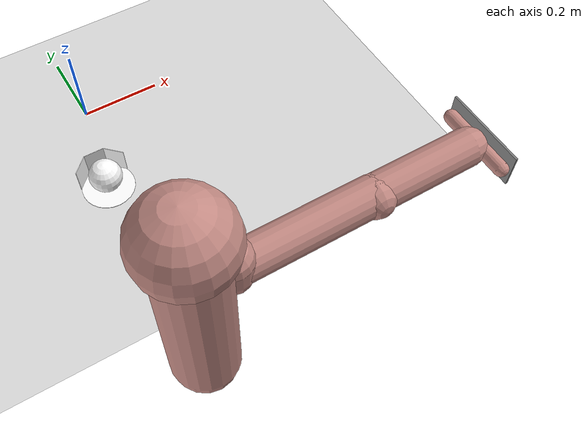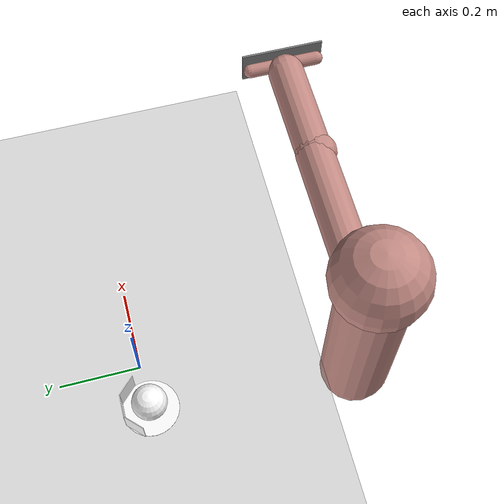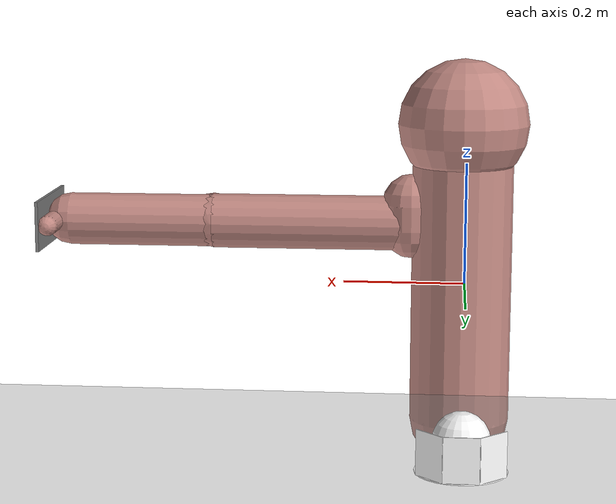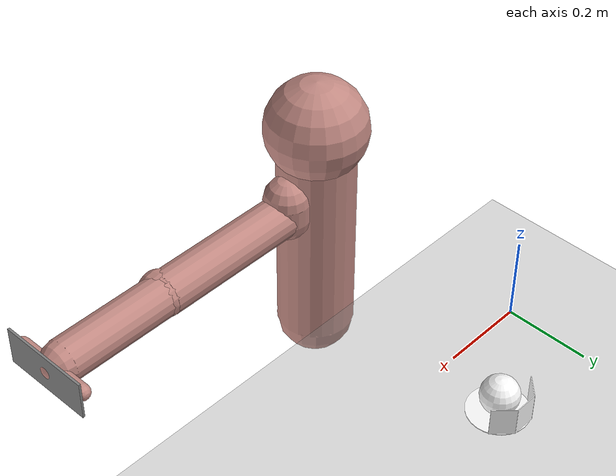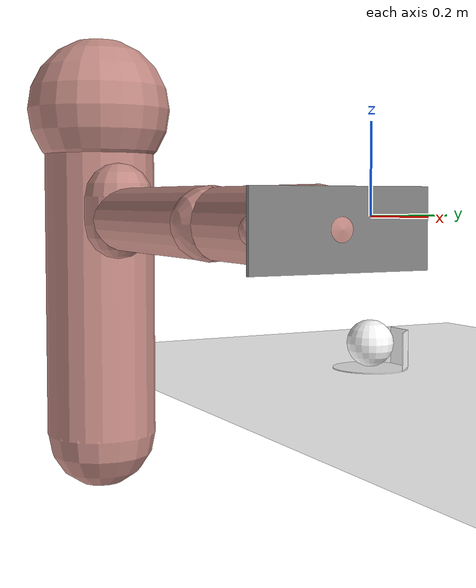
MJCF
<mujoco model="arm3d">
  <compiler inertiafromgeom="true" angle="radian" coordinate="local"/>
  <option timestep="0.01" gravity="0 0 0" iterations="20" integrator="Euler"/>

  <default>
    <joint armature='0.04' damping="1" limited="true"/>
    <geom friction=".0 .0 .0" density="300" margin="0.002" condim="1" contype="0" conaffinity="0"/>
  </default>

  <asset>
    <texture type="skybox" builtin="checker" rgb1="0 0 0" rgb2="0 0 0"
             width="256" height="256"/>
    <texture name="texgeom" type="cube" builtin="flat" mark="cross" width="127" height="1278" rgb1="0.8 0.6 0.4" rgb2="0.8 0.6 0.4" markrgb="1 1 1" random="0.01" />
    <texture name="texplane" type="2d" builtin="checker" rgb1=".5 .5 .5" rgb2=".5 .5 .5" width="100" height="100" />
    <texture name="texplane_show" type="2d" builtin="checker" rgb1="0 0 0" rgb2="0.9 0.9 0.9" width="100" height="100" />
    <material name='MatPlane' texture="texplane" shininess="1" texrepeat="30 30" specular="1"  reflectance="0.5" />
    <material name='geom' texture="texgeom" texuniform="true" />
  </asset>

  <worldbody>
    <light diffuse=".5 .5 .5" pos="0 0 3" dir="0 0 -1"/>
    <geom name="table" type="plane" pos="0 0.5 -0.325" size="1 1 0.1" contype="1" conaffinity="1"/>

    <body name="r_shoulder_pan_link" pos="0 -0.6 0">
      <geom name="h_e1" type="sphere" rgba="0.7725 0.549 0.5216 1" pos="0 0 0.2" size="0.13" />

      <geom name="h_sp" type="capsule" fromto="0 0 -0.4 0 0 0.2" size="0.1" rgba="0.7725 0.549 0.5216 1"/>

      <joint name="r_shoulder_pan_joint" type="hinge" pos="0 0 0" axis="0 0 1" range="-2.2854 1.714602" damping="1.0" />

      <body name="r_shoulder_lift_link" pos="0.1 0 0">
        <!--geom name="sl" type="capsule" fromto="0 -0.1 0 0 0.1 0" size="0.1" /-->
        <geom name="h_sl" type="capsule" fromto="0.0 0.0 -0.01 0 0.0 0.04" rgba="0.7725 0.549 0.5216 1" size="0.06" />
        <joint name="r_shoulder_lift_joint" type="hinge" pos="0 0 0" axis="0 1 0" range="-0.5236 1.3963" damping="1.0" />

        <body name="r_upper_arm_roll_link" pos="0 0 0">
          <!--geom name="uar" type="capsule" fromto="-0.1 0 0 0.1 0 0" size="0.02" /-->
          <geom name="h_uar" type="capsule" fromto="-0.1 0 0 0.1 0 0" size="0.02" rgba="0.7725 0.549 0.5216 1" />

          <joint name="r_upper_arm_roll_joint" type="hinge" pos="0 0 0" axis="1 0 0" range="-1.5 1.7" damping="0.1" />

          <body name="r_upper_arm_link" pos="0 0 0">
            <!--geom name="ua" type="capsule" fromto="0 0 0 0.4 0 0" size="0.06" /-->
            <geom name="h_ua" type="capsule" fromto="0 0 0 0.4 0 0" rgba="0.7725 0.549 0.5216 1" size="0.055" />

            <body name="r_elbow_flex_link" pos="0.4 0 0">
              <!--geom name="ef" type="capsule" fromto="0 -0.02 0 0.0 0.02 0" size="0.06" /-->
              <geom name="h_ef" type="capsule" fromto="0 -0.01 0 0.0 0.0 0" size="0.055" rgba="0.7725 0.549 0.5216 1" />
              <joint name="r_elbow_flex_joint" type="hinge" pos="0 0 0" axis="0 1 0" range="-2.3213 0" damping="0.1" />

              <body name="r_forearm_roll_link" pos="0 0 0">
                <!--geom name="fr" type="capsule" fromto="-0.1 0 0 0.1 0 0" size="0.02" /-->
                <geom name="h_fr" type="capsule" fromto="-0.01 0 0 0.01 0 0" size="0.001" rgba="0.7725 0.549 0.5216 1" />

                <joint name="r_forearm_roll_joint" type="hinge" limited="true" pos="0 0 0" axis="1 0 0" damping=".1" range="-1.5 1.5"/>

                <body name="r_forearm_link" pos="0 0 0">
                  <!--geom name="fa" type="capsule" fromto="0 0 0 0.291 0 0" size="0.05" /-->
                  <geom name="h_fa" type="capsule" fromto="0 0 0 0.291 0 0" size="0.053" rgba="0.7725 0.549 0.5216 1" />

                  <body name="r_wrist_flex_link" pos="0.321 0 0">
                    <!--geom name="wf" type="capsule" fromto="0 -0.02 0 0 0.02 0" size="0.01" /-->
                    <geom name="h_wf" type="capsule" fromto="0 -0.02 0 0 0.02 0" size="0.01" />

                    <joint name="r_wrist_flex_joint" type="hinge" pos="0 0 0" axis="0 1 0" range="-1.094 0" damping=".1" />

                    <body name="r_wrist_roll_link" pos="0 0 0">
                      <joint name="r_wrist_roll_joint" type="hinge" pos="0 0 0" limited="true" axis="1 0 0" damping="0.1" range="-1.5 1.5"/>

                      <body name="tips_arm" pos="0 0 0">
                        <geom conaffinity="1" contype="1" name="tip_arml" pos="0.017 0 0" size="0.003 0.12 0.05" type="box"/>

                      </body>
                      <geom conaffinity="1" contype="1" fromto="0 -0.1 0. 0.0 +0.1 0" size="0.02" type="capsule" rgba="0.7725 0.549 0.5216 1"/>
                    </body>
                  </body>
                </body>
              </body>
            </body>
          </body>
        </body>
      </body>
    </body>

    <body name="object" pos="0 0 -0.270" >
      <geom type="sphere" rgba="1 1 1 1" pos="0 0 0" size="0.05 0.05 0.05" contype="1" conaffinity="0"/>
      <joint name="obj_slidey" armature="0.1" type="slide" pos="0 0 0" axis="0 1 0" range="-10.3213 10.3" damping="0.5"/>
      <joint name="obj_slidex" armature="0.1" type="slide" pos="0 0 0" axis="1 0 0" range="-10.3213 10.3" damping="0.5"/>
    </body>

    <body name="goal" pos="0.0 0.0 -0.3230">

      <camera name="track" mode="fixed" pos="0 -0.8 1.5" xyaxes="1 -0.45 0 0 0.9 0.2"/>

      <geom rgba="1. 1. 1. 0" pos="0 0 0" type="box" size="0.01 0.01 0.01" contype="0" conaffinity="0"/>
      <body pos="0 0 0">
        <geom rgba="1. 1. 1. 1" pos="0 0.075 0.04" type="box" size="0.032 0.001 0.04" contype="0" conaffinity="1"/>
      </body>
      <body name="coaster" pos="0 0 0">
        <geom rgba="1. 1. 1. 1" type="cylinder" size="0.08 0.001 0.1" density='1000000' contype="0" conaffinity="0"/>
      </body>
      <body pos="0 0 0" axisangle="0 0 1 0.785">
        <geom rgba="1. 1. 1. 1" pos="0 0.075 0.04" type="box" size="0.032 0.001 0.04" contype="0" conaffinity="1"/>
      </body>
      <body pos="0 0 0" axisangle="0 0 1 -0.785">
        <geom rgba="1. 1. 1. 1" pos="0 0.075 0.04" type="box" size="0.032 0.001 0.04" contype="0" conaffinity="1"/>
      </body>
      <joint name="goal_free" type="free" pos="0 0 0" limited="false" damping="0"/>
    </body>
  </worldbody>

  <actuator>
    <motor joint="r_shoulder_pan_joint" ctrlrange="-3.0 3.0" ctrllimited="true" />
    <motor joint="r_shoulder_lift_joint" ctrlrange="-3.0 3.0" ctrllimited="true" />
    <motor joint="r_upper_arm_roll_joint" ctrlrange="-3.0 3.0" ctrllimited="true" />
    <motor joint="r_elbow_flex_joint" ctrlrange="-3.0 3.0" ctrllimited="true" />
    <motor joint="r_forearm_roll_joint" ctrlrange="-3.0 3.0" ctrllimited="true" />
    <motor joint="r_wrist_flex_joint" ctrlrange="-3.0 3.0" ctrllimited="true" />
    <motor joint="r_wrist_roll_joint" ctrlrange="-3.0 3.0" ctrllimited="true"/>
  </actuator>

</mujoco>
